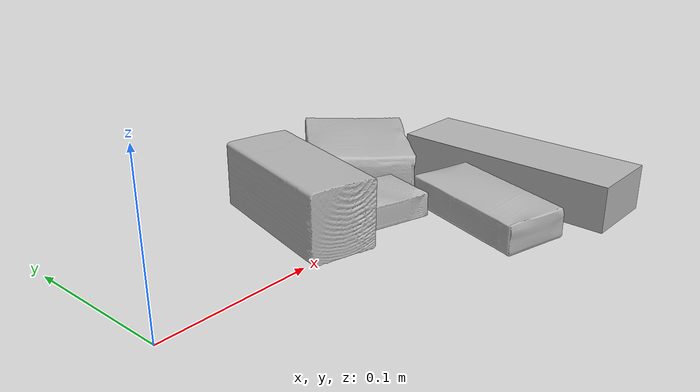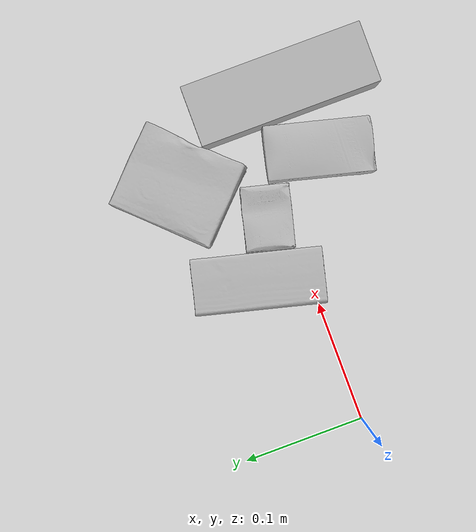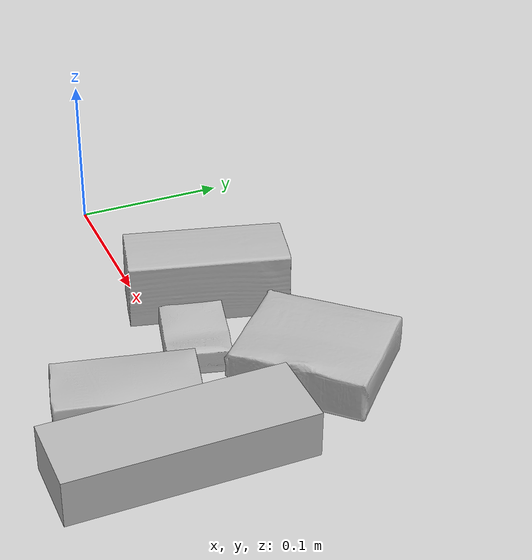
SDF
<sdf version="1.4">
  <world name="default">
    <light name="light1" type="point">
      <pose>0 0 1 0 0 0</pose>
      <diffuse>3 3 3 1</diffuse>
      <specular>3 3 3 1</specular>
    </light>
    <light name="light2" type="point">
      <pose>0 0.5 2 0 0 0</pose>
      <diffuse>1 1 1 1</diffuse>
      <specular>1 1 1 1</specular>
    </light>
    <light name="light3" type="point">
      <pose>0 0.5 2 0 0 0</pose>
      <diffuse>3 3 3 1</diffuse>
      <specular>3 3 3 1</specular>
    </light>
    <scene>
      <ambient>0.7 0.7 0.7</ambient>
    </scene>
    <model name="box1">
      <link name="link_box1">
        <collision name="default">
          <geometry>
            <mesh>
              <uri>model://sugar_box/collision_meshes/collision.obj</uri>
              <scale>0.5 0.5 0.5</scale>
            </mesh>
          </geometry>
          <surface>
            <friction>
              <ode>
                <mu>0.5</mu>
                <mu2>0.5</mu2>
              </ode>
            </friction>
          <contact>
        <ode>
            <max_vel>0</max_vel>
            <min_depth>0.0001</min_depth>
            <kp>1e8</kp>
        </ode>
    </contact></surface>
        </collision>
        <visual name="default">
          <geometry>
            <mesh>
              <uri>model://sugar_box/visual_meshes/visual.dae</uri>
              <scale>0.5 0.5 0.5</scale>
            </mesh>
          </geometry>
        </visual>
        <inertial>
          <mass>0.07249404489994049</mass>
          <pose>0.0005171863012947142 1.924554817378521e-05 -0.00018182402709499002 -0.00040462618385709627 0.0010506635220579009 0.0026153790218148127</pose>
          <inertia>
            <ixx>1.5100456e-05</ixx>
            <iyy>4.8807786e-05</iyy>
            <izz>5.842874e-05</izz>
            <ixy>0</ixy>
            <ixz>0</ixz>
            <iyz>0</iyz>
          </inertia>
        </inertial>
      </link>
      <pose>0.21753332018852234 -0.042507998645305634 0.011399304494261742 0.0007750413618255763 -0.023432967911643253 1.3167393582109588</pose>
    </model>
    <model name="box2">
      <link name="link_box2">
        <collision name="default">
          <geometry>
            <mesh>
              <uri>model://cracker_box/collision_meshes/collision.obj</uri>
              <scale>0.25 0.25 0.25</scale>
            </mesh>
          </geometry>
          <surface>
            <friction>
              <ode>
                <mu>0.5</mu>
                <mu2>0.5</mu2>
              </ode>
            </friction>
          <contact>
        <ode>
            <max_vel>0</max_vel>
            <min_depth>0.0001</min_depth>
            <kp>1e8</kp>
        </ode>
    </contact></surface>
        </collision>
        <visual name="default">
          <geometry>
            <mesh>
              <uri>model://cracker_box/visual_meshes/visual.dae</uri>
              <scale>0.25 0.25 0.25</scale>
            </mesh>
          </geometry>
        </visual>
        <inertial>
          <mass>0.019660919904708862</mass>
          <pose>0.00023660410079173744 6.358561222441494e-05 -0.0004257383698131889 -0.00031620756431779875 -0.011106489600602764 0.0025467940703044144</pose>
          <inertia>
            <ixx>3.125538e-06</ixx>
            <iyy>5.1608768e-06</iyy>
            <izz>7.365045e-06</izz>
            <ixy>0</ixy>
            <ixz>0</ixz>
            <iyz>0</iyz>
          </inertia>
        </inertial>
      </link>
      <pose>0.1804722100496292 0.015170853585004807 0.009120449423789978 -0.0117880624670622 -0.007367272065165036 2.8886647455913304</pose>
    </model>
    <model name="box3">
      <link name="link_box3">
        <collision name="default">
          <geometry>
            <mesh>
              <uri>model://wood_block/collision_meshes/collision.obj</uri>
              <scale>0.5 0.5 0.5</scale>
            </mesh>
          </geometry>
          <surface>
            <friction>
              <ode>
                <mu>0.5</mu>
                <mu2>0.5</mu2>
              </ode>
            </friction>
          <contact>
        <ode>
            <max_vel>0</max_vel>
            <min_depth>0.0001</min_depth>
            <kp>1e8</kp>
        </ode>
    </contact></surface>
        </collision>
        <visual name="default">
          <geometry>
            <mesh>
              <uri>model://wood_block/visual_meshes/visual.dae</uri>
              <scale>0.5 0.5 0.5</scale>
            </mesh>
          </geometry>
        </visual>
        <inertial>
          <mass>0.22331082820892334</mass>
          <pose>-2.9066577553749084e-06 -0.000285404734313488 0.00013204292918089777 -0.0522110088927385 -0.005192696049127085 -0.006861379582621758</pose>
          <inertia>
            <ixx>7.470592e-05</ixx>
            <iyy>0.00023599603</iyy>
            <izz>0.0002351133</izz>
            <ixy>0</ixy>
            <ixz>0</ixz>
            <iyz>0</iyz>
          </inertia>
        </inertial>
      </link>
      <pose>0.13652122020721436 0.03987977281212807 0.022629255428910255 -0.005208641650859398 0.005718734381646198 -1.8196097050991633</pose>
    </model>
    <model name="box4">
      <link name="link_box4">
        <collision name="default">
          <geometry>
            <mesh>
              <uri>model://jenga/collision_meshes/collision.obj</uri>
              <scale>1.0 1.0 1.0</scale>
            </mesh>
          </geometry>
          <surface>
            <friction>
              <ode>
                <mu>0.5</mu>
                <mu2>0.5</mu2>
              </ode>
            </friction>
          <contact>
        <ode>
            <max_vel>0</max_vel>
            <min_depth>0.0001</min_depth>
            <kp>1e8</kp>
        </ode>
    </contact></surface>
        </collision>
        <visual name="default">
          <geometry>
            <mesh>
              <uri>model://jenga/visual_meshes/visual.dae</uri>
              <scale>1.0 1.0 1.0</scale>
            </mesh>
          </geometry>
        </visual>
        <inertial>
          <mass>0.1217927634716034</mass>
          <pose>-2.502855807051674e-07 -0.00010250010382151231 -4.0923401684267446e-05 0.0 -7.34215461761844e-07 0.0</pose>
          <inertia>
            <ixx>3.370301e-05</ixx>
            <iyy>0.00022837071</iyy>
            <izz>0.00024380515</izz>
            <ixy>0</ixy>
            <ixz>0</ixz>
            <iyz>0</iyz>
          </inertia>
        </inertial>
      </link>
      <pose>0.2751336097717285 -0.030427902936935425 0.014999997802078724 -3.0476844411058934e-06 9.266143281115715e-07 1.5685818234598858</pose>
    </model>
    <model name="box5">
      <link name="link_box5">
        <collision name="default">
          <geometry>
            <mesh>
              <uri>model://gelatin_box/collision_meshes/collision.obj</uri>
              <scale>1.0 1.0 1.0</scale>
            </mesh>
          </geometry>
          <surface>
            <friction>
              <ode>
                <mu>0.5</mu>
                <mu2>0.5</mu2>
              </ode>
            </friction>
          <contact>
        <ode>
            <max_vel>0</max_vel>
            <min_depth>0.0001</min_depth>
            <kp>1e8</kp>
        </ode>
    </contact></surface>
        </collision>
        <visual name="default">
          <geometry>
            <mesh>
              <uri>model://gelatin_box/visual_meshes/visual.dae</uri>
              <scale>1.0 1.0 1.0</scale>
            </mesh>
          </geometry>
        </visual>
        <inertial>
          <mass>0.09479870647192001</mass>
          <pose>0.0004319618456065655 0.00011156871914863586 -0.0003640321083366871 -0.0010503720924044775 -0.0047558191559584585 0.01644055760930107</pose>
          <inertia>
            <ixx>6.6920154e-05</ixx>
            <iyy>4.780071e-05</iyy>
            <izz>0.00010186739</izz>
            <ixy>0</ixy>
            <ixz>0</ixz>
            <iyz>0</iyz>
          </inertia>
        </inertial>
      </link>
      <pose>0.22908222675323486 0.07339149713516235 0.014667189680039883 0.01313881500926503 0.015611093374239068 -0.7833766986047055</pose>
    </model>
  <physics type="ode">
      <max_contacts>50</max_contacts>
      <ode>
        <solver>
          <type>quick</type>
          <iters>75</iters>
        </solver>
        <constraints>
          <contact_max_correcting_vel>0</contact_max_correcting_vel>
          <contact_surface_layer>0</contact_surface_layer>
        </constraints>
      </ode>
    </physics></world>
</sdf>
